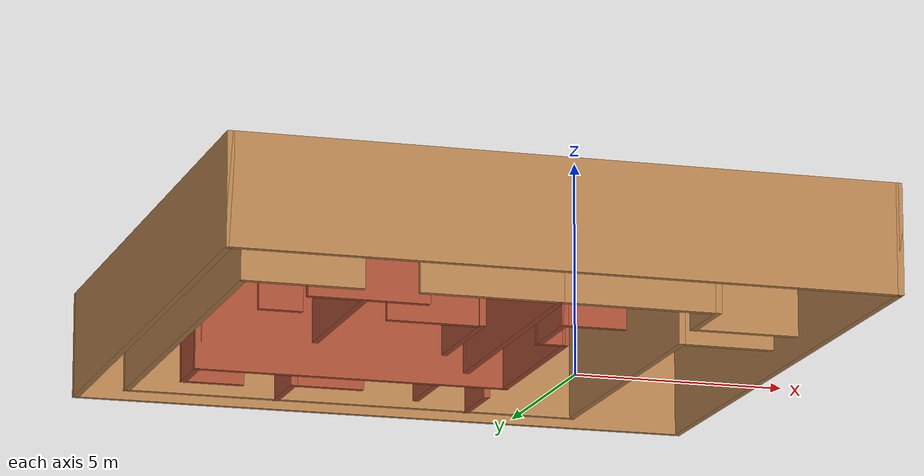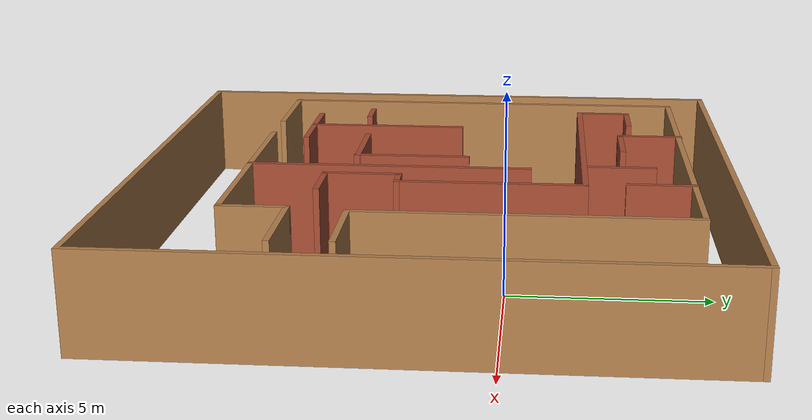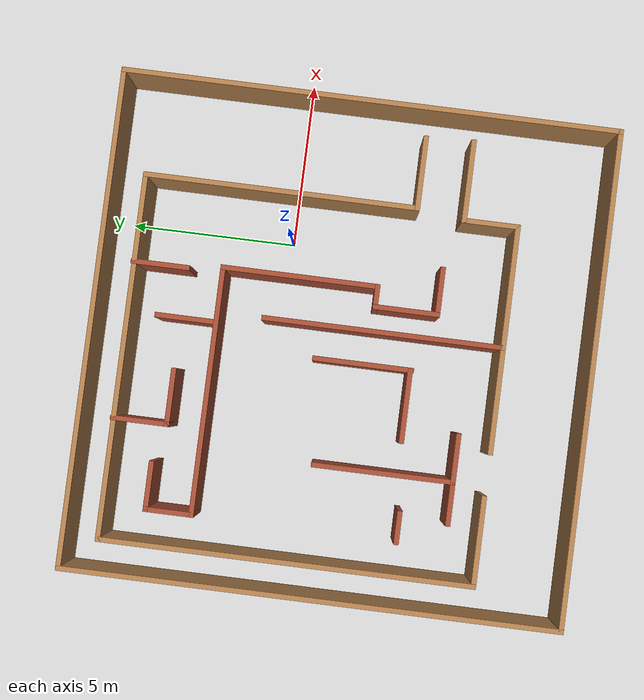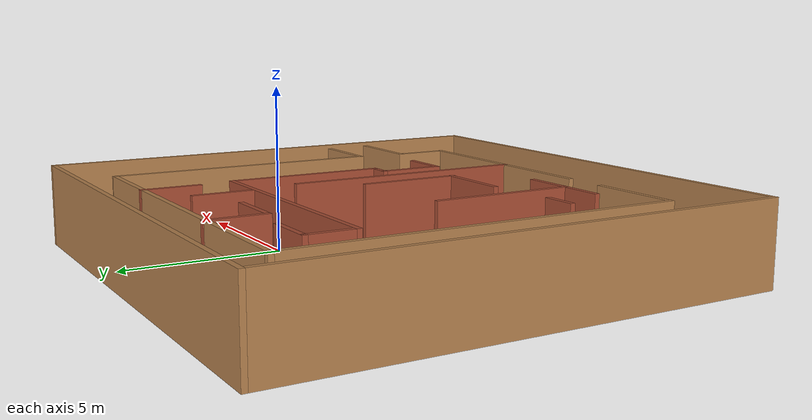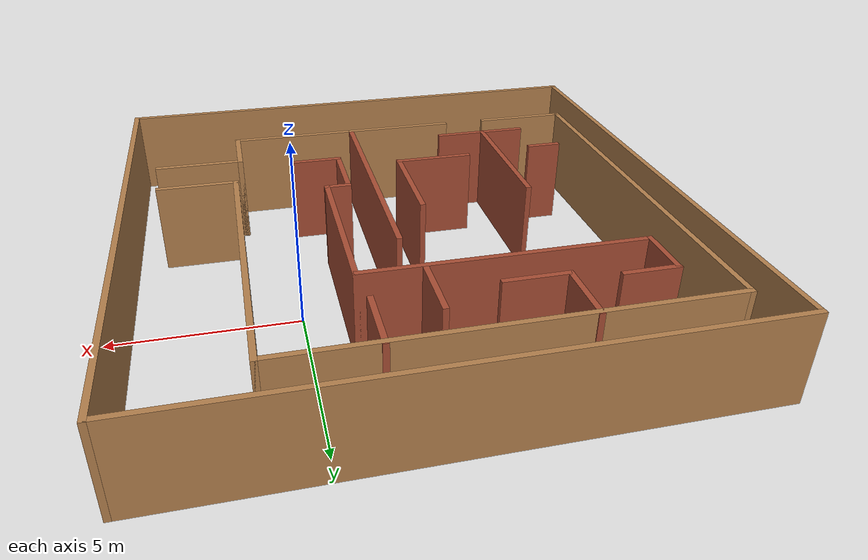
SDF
<?xml version='1.0'?>
<sdf version='1.7'>
  <model name='maze'>
    <pose>-3.06743 -1.85148 0 0 -0 0</pose>
    <link name='Wall_101'>
      <collision name='Wall_101_Collision'>
        <geometry>
          <box>
            <size>2 0.15 2.5</size>
          </box>
        </geometry>
        <pose>0 0 1.25 0 -0 0</pose>
      </collision>
      <visual name='Wall_101_Visual'>
        <pose>0 0 1.25 0 -0 0</pose>
        <geometry>
          <box>
            <size>2 0.15 2.5</size>
          </box>
        </geometry>
        <material>
          <script>
            <uri>file://media/materials/scripts/gazebo.material</uri>
            <name>Gazebo/Bricks</name>
          </script>
          <ambient>1 1 1 1</ambient>
        </material>
        <meta>
          <layer>0</layer>
        </meta>
      </visual>
      <pose>1.35322 -1.77131 0 0 -0 -1.5708</pose>
    </link>
    <link name='Wall_102'>
      <collision name='Wall_102_Collision'>
        <geometry>
          <box>
            <size>1.5 0.15 2.5</size>
          </box>
        </geometry>
        <pose>0 0 1.25 0 -0 0</pose>
      </collision>
      <visual name='Wall_102_Visual'>
        <pose>0 0 1.25 0 -0 0</pose>
        <geometry>
          <box>
            <size>1.5 0.15 2.5</size>
          </box>
        </geometry>
        <material>
          <script>
            <uri>file://media/materials/scripts/gazebo.material</uri>
            <name>Gazebo/Bricks</name>
          </script>
          <ambient>1 1 1 1</ambient>
        </material>
        <meta>
          <layer>0</layer>
        </meta>
      </visual>
      <pose>2.02822 -2.69631 0 0 -0 0</pose>
    </link>
    <link name='Wall_104'>
      <collision name='Wall_104_Collision'>
        <geometry>
          <box>
            <size>1.75 0.15 2.5</size>
          </box>
        </geometry>
        <pose>0 0 1.25 0 -0 0</pose>
      </collision>
      <visual name='Wall_104_Visual'>
        <pose>0 0 1.25 0 -0 0</pose>
        <geometry>
          <box>
            <size>1.75 0.15 2.5</size>
          </box>
        </geometry>
        <material>
          <script>
            <uri>file://media/materials/scripts/gazebo.material</uri>
            <name>Gazebo/Bricks</name>
          </script>
          <ambient>1 1 1 1</ambient>
        </material>
        <meta>
          <layer>0</layer>
        </meta>
      </visual>
      <pose>-2.84977 5.6071 0 0 -0 -1.5708</pose>
    </link>
    <link name='Wall_105'>
      <collision name='Wall_105_Collision'>
        <geometry>
          <box>
            <size>1.75 0.15 2.5</size>
          </box>
        </geometry>
        <pose>0 0 1.25 0 -0 0</pose>
      </collision>
      <visual name='Wall_105_Visual'>
        <pose>0 0 1.25 0 -0 0</pose>
        <geometry>
          <box>
            <size>1.75 0.15 2.5</size>
          </box>
        </geometry>
        <material>
          <script>
            <uri>file://media/materials/scripts/gazebo.material</uri>
            <name>Gazebo/Bricks</name>
          </script>
          <ambient>1 1 1 1</ambient>
        </material>
        <meta>
          <layer>0</layer>
        </meta>
      </visual>
      <pose>-2.04977 4.8071 0 0 -0 0</pose>
    </link>
    <link name='Wall_108'>
      <collision name='Wall_108_Collision'>
        <geometry>
          <box>
            <size>1.75 0.15 2.5</size>
          </box>
        </geometry>
        <pose>0 0 1.25 0 -0 0</pose>
      </collision>
      <visual name='Wall_108_Visual'>
        <pose>0 0 1.25 0 -0 0</pose>
        <geometry>
          <box>
            <size>1.75 0.15 2.5</size>
          </box>
        </geometry>
        <material>
          <script>
            <uri>file://media/materials/scripts/gazebo.material</uri>
            <name>Gazebo/Bricks</name>
          </script>
          <ambient>1 1 1 1</ambient>
        </material>
        <meta>
          <layer>0</layer>
        </meta>
      </visual>
      <pose>0.315658 4.7027 0 0 -0 -1.5708</pose>
    </link>
    <link name='Wall_111'>
      <collision name='Wall_111_Collision'>
        <geometry>
          <box>
            <size>1.75 0.15 2.5</size>
          </box>
        </geometry>
        <pose>0 0 1.25 0 -0 0</pose>
      </collision>
      <visual name='Wall_111_Visual'>
        <pose>0 0 1.25 0 -0 0</pose>
        <geometry>
          <box>
            <size>1.75 0.15 2.5</size>
          </box>
        </geometry>
        <material>
          <script>
            <uri>file://media/materials/scripts/gazebo.material</uri>
            <name>Gazebo/Bricks</name>
          </script>
          <ambient>1 1 1 1</ambient>
        </material>
        <meta>
          <layer>0</layer>
        </meta>
      </visual>
      <pose>1.80527 5.6071 0 0 -0 -1.5708</pose>
    </link>
    <link name='Wall_113'>
      <collision name='Wall_113_Collision'>
        <geometry>
          <box>
            <size>7.5 0.15 2.5</size>
          </box>
        </geometry>
        <pose>0 0 1.25 0 -0 0</pose>
      </collision>
      <visual name='Wall_113_Visual'>
        <pose>0 0 1.25 0 -0 0</pose>
        <geometry>
          <box>
            <size>7.5 0.15 2.5</size>
          </box>
        </geometry>
        <material>
          <script>
            <uri>file://media/materials/scripts/gazebo.material</uri>
            <name>Gazebo/Bricks</name>
          </script>
          <ambient>1 1 1 1</ambient>
        </material>
        <meta>
          <layer>0</layer>
        </meta>
      </visual>
      <pose>-1.72178 3.75369 0 0 -0 0</pose>
    </link>
    <link name='Wall_114'>
      <collision name='Wall_114_Collision'>
        <geometry>
          <box>
            <size>4.75 0.15 2.5</size>
          </box>
        </geometry>
        <pose>0 0 1.25 0 -0 0</pose>
      </collision>
      <visual name='Wall_114_Visual'>
        <pose>0 0 1.25 0 -0 0</pose>
        <geometry>
          <box>
            <size>4.75 0.15 2.5</size>
          </box>
        </geometry>
        <material>
          <script>
            <uri>file://media/materials/scripts/gazebo.material</uri>
            <name>Gazebo/Bricks</name>
          </script>
          <ambient>1 1 1 1</ambient>
        </material>
        <meta>
          <layer>0</layer>
        </meta>
      </visual>
      <pose>1.95322 1.45369 0 0 -0 -1.5708</pose>
    </link>
    <link name='Wall_115'>
      <collision name='Wall_115_Collision'>
        <geometry>
          <box>
            <size>0.75 0.15 2.5</size>
          </box>
        </geometry>
        <pose>0 0 1.25 0 -0 0</pose>
      </collision>
      <visual name='Wall_115_Visual'>
        <pose>0 0 1.25 0 -0 0</pose>
        <geometry>
          <box>
            <size>0.75 0.15 2.5</size>
          </box>
        </geometry>
        <material>
          <script>
            <uri>file://media/materials/scripts/gazebo.material</uri>
            <name>Gazebo/Bricks</name>
          </script>
          <ambient>1 1 1 1</ambient>
        </material>
        <meta>
          <layer>0</layer>
        </meta>
      </visual>
      <pose>1.65322 -0.846307 0 0 -0 3.14159</pose>
    </link>
    <link name='Wall_65'>
      <collision name='Wall_65_Collision'>
        <geometry>
          <box>
            <size>15 0.15 2.5</size>
          </box>
        </geometry>
        <pose>0 0 1.25 0 -0 0</pose>
      </collision>
      <visual name='Wall_65_Visual'>
        <pose>0 0 1.25 0 -0 0</pose>
        <geometry>
          <box>
            <size>15 0.15 2.5</size>
          </box>
        </geometry>
        <material>
          <script>
            <uri>file://media/materials/scripts/gazebo.material</uri>
            <name>Gazebo/Wood</name>
          </script>
          <ambient>1 1 1 1</ambient>
        </material>
        <meta>
          <layer>0</layer>
        </meta>
      </visual>
      <pose>-0 -7.425 0 0 -0 0</pose>
    </link>
    <link name='Wall_66'>
      <collision name='Wall_66_Collision'>
        <geometry>
          <box>
            <size>15 0.15 2.5</size>
          </box>
        </geometry>
        <pose>0 0 1.25 0 -0 0</pose>
      </collision>
      <visual name='Wall_66_Visual'>
        <pose>0 0 1.25 0 -0 0</pose>
        <geometry>
          <box>
            <size>15 0.15 2.5</size>
          </box>
        </geometry>
        <material>
          <script>
            <uri>file://media/materials/scripts/gazebo.material</uri>
            <name>Gazebo/Wood</name>
          </script>
          <ambient>1 1 1 1</ambient>
        </material>
        <meta>
          <layer>0</layer>
        </meta>
      </visual>
      <pose>7.425 -0 0 0 -0 1.5708</pose>
    </link>
    <link name='Wall_67'>
      <collision name='Wall_67_Collision'>
        <geometry>
          <box>
            <size>15 0.15 2.5</size>
          </box>
        </geometry>
        <pose>0 0 1.25 0 -0 0</pose>
      </collision>
      <visual name='Wall_67_Visual'>
        <pose>0 0 1.25 0 -0 0</pose>
        <geometry>
          <box>
            <size>15 0.15 2.5</size>
          </box>
        </geometry>
        <material>
          <script>
            <uri>file://media/materials/scripts/gazebo.material</uri>
            <name>Gazebo/Wood</name>
          </script>
          <ambient>1 1 1 1</ambient>
        </material>
        <meta>
          <layer>0</layer>
        </meta>
      </visual>
      <pose>-0 7.425 0 0 -0 3.14159</pose>
    </link>
    <link name='Wall_68'>
      <collision name='Wall_68_Collision'>
        <geometry>
          <box>
            <size>15 0.15 2.5</size>
          </box>
        </geometry>
        <pose>0 0 1.25 0 -0 0</pose>
      </collision>
      <visual name='Wall_68_Visual'>
        <pose>0 0 1.25 0 -0 0</pose>
        <geometry>
          <box>
            <size>15 0.15 2.5</size>
          </box>
        </geometry>
        <material>
          <script>
            <uri>file://media/materials/scripts/gazebo.material</uri>
            <name>Gazebo/Wood</name>
          </script>
          <ambient>1 1 1 1</ambient>
        </material>
        <meta>
          <layer>0</layer>
        </meta>
      </visual>
      <pose>-7.425 -0 0 0 -0 -1.5708</pose>
    </link>
    <link name='Wall_70'>
      <collision name='Wall_70_Collision'>
        <geometry>
          <box>
            <size>11.25 0.15 2.5</size>
          </box>
        </geometry>
        <pose>0 0 1.25 0 -0 0</pose>
      </collision>
      <visual name='Wall_70_Visual'>
        <pose>0 0 1.25 0 -0 0</pose>
        <geometry>
          <box>
            <size>11.25 0.15 2.5</size>
          </box>
        </geometry>
        <material>
          <script>
            <uri>file://media/materials/scripts/gazebo.material</uri>
            <name>Gazebo/Wood</name>
          </script>
          <ambient>1 1 1 1</ambient>
        </material>
        <meta>
          <layer>0</layer>
        </meta>
      </visual>
      <pose>-6.44079 0.830503 0 0 -0 -1.5708</pose>
    </link>
    <link name='Wall_71'>
      <collision name='Wall_71_Collision'>
        <geometry>
          <box>
            <size>2.75 0.15 2.5</size>
          </box>
        </geometry>
        <pose>0 0 1.25 0 -0 0</pose>
      </collision>
      <visual name='Wall_71_Visual'>
        <pose>0 0 1.25 0 -0 0</pose>
        <geometry>
          <box>
            <size>2.75 0.15 2.5</size>
          </box>
        </geometry>
        <material>
          <script>
            <uri>file://media/materials/scripts/gazebo.material</uri>
            <name>Gazebo/Wood</name>
          </script>
          <ambient>1 1 1 1</ambient>
        </material>
        <meta>
          <layer>0</layer>
        </meta>
      </visual>
      <pose>-5.14079 -4.7195 0 0 -0 0</pose>
    </link>
    <link name='Wall_73'>
      <collision name='Wall_73_Collision'>
        <geometry>
          <box>
            <size>2.75 0.15 2.5</size>
          </box>
        </geometry>
        <pose>0 0 1.25 0 -0 0</pose>
      </collision>
      <visual name='Wall_73_Visual'>
        <pose>0 0 1.25 0 -0 0</pose>
        <geometry>
          <box>
            <size>2.75 0.15 2.5</size>
          </box>
        </geometry>
        <material>
          <script>
            <uri>file://media/materials/scripts/gazebo.material</uri>
            <name>Gazebo/Bricks</name>
          </script>
          <ambient>1 1 1 1</ambient>
        </material>
        <meta>
          <layer>0</layer>
        </meta>
      </visual>
      <pose>-3.41178 -3.75417 0 0 -0 0</pose>
    </link>
    <link name='Wall_75'>
      <collision name='Wall_75_Collision'>
        <geometry>
          <box>
            <size>4.25 0.15 2.5</size>
          </box>
        </geometry>
        <pose>0 0 1.25 0 -0 0</pose>
      </collision>
      <visual name='Wall_75_Visual'>
        <pose>0 0 1.25 0 -0 0</pose>
        <geometry>
          <box>
            <size>4.25 0.15 2.5</size>
          </box>
        </geometry>
        <material>
          <script>
            <uri>file://media/materials/scripts/gazebo.material</uri>
            <name>Gazebo/Bricks</name>
          </script>
          <ambient>1 1 1 1</ambient>
        </material>
        <meta>
          <layer>0</layer>
        </meta>
      </visual>
      <pose>-3.48817 -1.67757 0 0 -0 1.5708</pose>
    </link>
    <link name='Wall_77'>
      <collision name='Wall_77_Collision'>
        <geometry>
          <box>
            <size>1 0.15 2.5</size>
          </box>
        </geometry>
        <pose>0 0 1.25 0 -0 0</pose>
      </collision>
      <visual name='Wall_77_Visual'>
        <pose>0 0 1.25 0 -0 0</pose>
        <geometry>
          <box>
            <size>1 0.15 2.5</size>
          </box>
        </geometry>
        <material>
          <script>
            <uri>file://media/materials/scripts/gazebo.material</uri>
            <name>Gazebo/Bricks</name>
          </script>
          <ambient>1 1 1 1</ambient>
        </material>
        <meta>
          <layer>0</layer>
        </meta>
      </visual>
      <pose>-5.01039 -2.31776 0 0 -0 0</pose>
    </link>
    <link name='Wall_79'>
      <collision name='Wall_79_Collision'>
        <geometry>
          <box>
            <size>2.25 0.15 2.5</size>
          </box>
        </geometry>
        <pose>0 0 1.25 0 -0 0</pose>
      </collision>
      <visual name='Wall_79_Visual'>
        <pose>0 0 1.25 0 -0 0</pose>
        <geometry>
          <box>
            <size>2.25 0.15 2.5</size>
          </box>
        </geometry>
        <material>
          <script>
            <uri>file://media/materials/scripts/gazebo.material</uri>
            <name>Gazebo/Bricks</name>
          </script>
          <ambient>1 1 1 1</ambient>
        </material>
        <meta>
          <layer>0</layer>
        </meta>
      </visual>
      <pose>-1.42736 -2.10496 0 0 -0 0</pose>
    </link>
    <link name='Wall_80'>
      <collision name='Wall_80_Collision'>
        <geometry>
          <box>
            <size>3.0106 0.15 2.5</size>
          </box>
        </geometry>
        <pose>0 0 1.25 0 -0 0</pose>
      </collision>
      <visual name='Wall_80_Visual'>
        <pose>0 0 1.25 0 -0 0</pose>
        <geometry>
          <box>
            <size>3.0106 0.15 2.5</size>
          </box>
        </geometry>
        <material>
          <script>
            <uri>file://media/materials/scripts/gazebo.material</uri>
            <name>Gazebo/Bricks</name>
          </script>
          <ambient>1 1 1 1</ambient>
        </material>
        <meta>
          <layer>0</layer>
        </meta>
      </visual>
      <pose>-0.377363 -0.701262 0 0 -0 1.5708</pose>
    </link>
    <link name='Wall_82'>
      <collision name='Wall_82_Collision'>
        <geometry>
          <box>
            <size>3.25 0.15 2.5</size>
          </box>
        </geometry>
        <pose>0 0 1.25 0 -0 0</pose>
      </collision>
      <visual name='Wall_82_Visual'>
        <pose>0 0 1.25 0 -0 0</pose>
        <geometry>
          <box>
            <size>3.25 0.15 2.5</size>
          </box>
        </geometry>
        <material>
          <script>
            <uri>file://media/materials/scripts/gazebo.material</uri>
            <name>Gazebo/Wood</name>
          </script>
          <ambient>1 1 1 1</ambient>
        </material>
        <meta>
          <layer>0</layer>
        </meta>
      </visual>
      <pose>-0.927363 -4.73838 0 0 -0 0</pose>
    </link>
    <link name='Wall_83'>
      <collision name='Wall_83_Collision'>
        <geometry>
          <box>
            <size>7.25 0.15 2.5</size>
          </box>
        </geometry>
        <pose>0 0 1.25 0 -0 0</pose>
      </collision>
      <visual name='Wall_83_Visual'>
        <pose>0 0 1.25 0 -0 0</pose>
        <geometry>
          <box>
            <size>7.25 0.15 2.5</size>
          </box>
        </geometry>
        <material>
          <script>
            <uri>file://media/materials/scripts/gazebo.material</uri>
            <name>Gazebo/Bricks</name>
          </script>
          <ambient>1 1 1 1</ambient>
        </material>
        <meta>
          <layer>0</layer>
        </meta>
      </visual>
      <pose>0.622637 -1.18838 0 0 -0 1.5708</pose>
    </link>
    <link name='Wall_86'>
      <collision name='Wall_86_Collision'>
        <geometry>
          <box>
            <size>11 0.15 2.5</size>
          </box>
        </geometry>
        <pose>0 0 1.25 0 -0 0</pose>
      </collision>
      <visual name='Wall_86_Visual'>
        <pose>0 0 1.25 0 -0 0</pose>
        <geometry>
          <box>
            <size>11 0.15 2.5</size>
          </box>
        </geometry>
        <material>
          <script>
            <uri>file://media/materials/scripts/gazebo.material</uri>
            <name>Gazebo/Wood</name>
          </script>
          <ambient>1 1 1 1</ambient>
        </material>
        <meta>
          <layer>0</layer>
        </meta>
      </visual>
      <pose>-1.01579 6.3805 0 0 -0 0</pose>
    </link>
    <link name='Wall_87'>
      <collision name='Wall_87_Collision'>
        <geometry>
          <box>
            <size>8.25 0.15 2.5</size>
          </box>
        </geometry>
        <pose>0 0 1.25 0 -0 0</pose>
      </collision>
      <visual name='Wall_87_Visual'>
        <pose>0 0 1.25 0 -0 0</pose>
        <geometry>
          <box>
            <size>8.25 0.15 2.5</size>
          </box>
        </geometry>
        <material>
          <script>
            <uri>file://media/materials/scripts/gazebo.material</uri>
            <name>Gazebo/Wood</name>
          </script>
          <ambient>1 1 1 1</ambient>
        </material>
        <meta>
          <layer>0</layer>
        </meta>
      </visual>
      <pose>4.40921 2.3305 0 0 -0 -1.5708</pose>
    </link>
    <link name='Wall_88'>
      <collision name='Wall_88_Collision'>
        <geometry>
          <box>
            <size>2.25 0.15 2.5</size>
          </box>
        </geometry>
        <pose>0 0 1.25 0 -0 0</pose>
      </collision>
      <visual name='Wall_88_Visual'>
        <pose>0 0 1.25 0 -0 0</pose>
        <geometry>
          <box>
            <size>2.25 0.15 2.5</size>
          </box>
        </geometry>
        <material>
          <script>
            <uri>file://media/materials/scripts/gazebo.material</uri>
            <name>Gazebo/Wood</name>
          </script>
          <ambient>1 1 1 1</ambient>
        </material>
        <meta>
          <layer>0</layer>
        </meta>
      </visual>
      <pose>5.45921 -1.7195 0 0 -0 0</pose>
    </link>
    <link name='Wall_92'>
      <collision name='Wall_92_Collision'>
        <geometry>
          <box>
            <size>3.75 0.15 2.5</size>
          </box>
        </geometry>
        <pose>0 0 1.25 0 -0 0</pose>
      </collision>
      <visual name='Wall_92_Visual'>
        <pose>0 0 1.25 0 -0 0</pose>
        <geometry>
          <box>
            <size>3.75 0.15 2.5</size>
          </box>
        </geometry>
        <material>
          <script>
            <uri>file://media/materials/scripts/gazebo.material</uri>
            <name>Gazebo/Wood</name>
          </script>
          <ambient>1 1 1 1</ambient>
        </material>
        <meta>
          <layer>0</layer>
        </meta>
      </visual>
      <pose>2.42264 -4.73838 0 0 -0 0</pose>
    </link>
    <link name='Wall_93'>
      <collision name='Wall_93_Collision'>
        <geometry>
          <box>
            <size>1.75 0.15 2.5</size>
          </box>
        </geometry>
        <pose>0 0 1.25 0 -0 0</pose>
      </collision>
      <visual name='Wall_93_Visual'>
        <pose>0 0 1.25 0 -0 0</pose>
        <geometry>
          <box>
            <size>1.75 0.15 2.5</size>
          </box>
        </geometry>
        <material>
          <script>
            <uri>file://media/materials/scripts/gazebo.material</uri>
            <name>Gazebo/Wood</name>
          </script>
          <ambient>1 1 1 1</ambient>
        </material>
        <meta>
          <layer>0</layer>
        </meta>
      </visual>
      <pose>4.22264 -3.93838 0 0 -0 1.5708</pose>
    </link>
    <link name='Wall_94'>
      <collision name='Wall_94_Collision'>
        <geometry>
          <box>
            <size>2.5 0.15 2.5</size>
          </box>
        </geometry>
        <pose>0 0 1.25 0 -0 0</pose>
      </collision>
      <visual name='Wall_94_Visual'>
        <pose>0 0 1.25 0 -0 0</pose>
        <geometry>
          <box>
            <size>2.5 0.15 2.5</size>
          </box>
        </geometry>
        <material>
          <script>
            <uri>file://media/materials/scripts/gazebo.material</uri>
            <name>Gazebo/Wood</name>
          </script>
          <ambient>1 1 1 1</ambient>
        </material>
        <meta>
          <layer>0</layer>
        </meta>
      </visual>
      <pose>5.39764 -3.13838 0 0 -0 0</pose>
    </link>
    <link name='Wall_96'>
      <collision name='Wall_96_Collision'>
        <geometry>
          <box>
            <size>1.5 0.15 2.5</size>
          </box>
        </geometry>
        <pose>0 0 1.25 0 -0 0</pose>
      </collision>
      <visual name='Wall_96_Visual'>
        <pose>0 0 1.25 0 -0 0</pose>
        <geometry>
          <box>
            <size>1.5 0.15 2.5</size>
          </box>
        </geometry>
        <material>
          <script>
            <uri>file://media/materials/scripts/gazebo.material</uri>
            <name>Gazebo/Bricks</name>
          </script>
          <ambient>1 1 1 1</ambient>
        </material>
        <meta>
          <layer>0</layer>
        </meta>
      </visual>
      <pose>-4.72178 5.10369 0 0 -0 3.14159</pose>
    </link>
    <link name='Wall_97'>
      <collision name='Wall_97_Collision'>
        <geometry>
          <box>
            <size>1.5 0.15 2.5</size>
          </box>
        </geometry>
        <pose>0 0 1.25 0 -0 0</pose>
      </collision>
      <visual name='Wall_97_Visual'>
        <pose>0 0 1.25 0 -0 0</pose>
        <geometry>
          <box>
            <size>1.5 0.15 2.5</size>
          </box>
        </geometry>
        <material>
          <script>
            <uri>file://media/materials/scripts/gazebo.material</uri>
            <name>Gazebo/Bricks</name>
          </script>
          <ambient>1 1 1 1</ambient>
        </material>
        <meta>
          <layer>0</layer>
        </meta>
      </visual>
      <pose>-5.39677 4.42869 0 0 -0 -1.5708</pose>
    </link>
    <static>1</static>
  </model>
</sdf>
